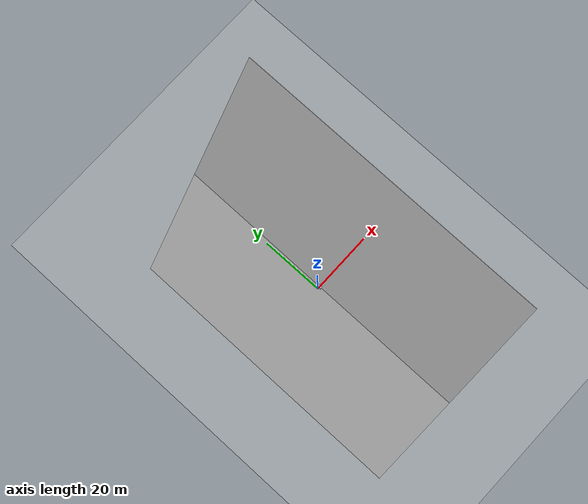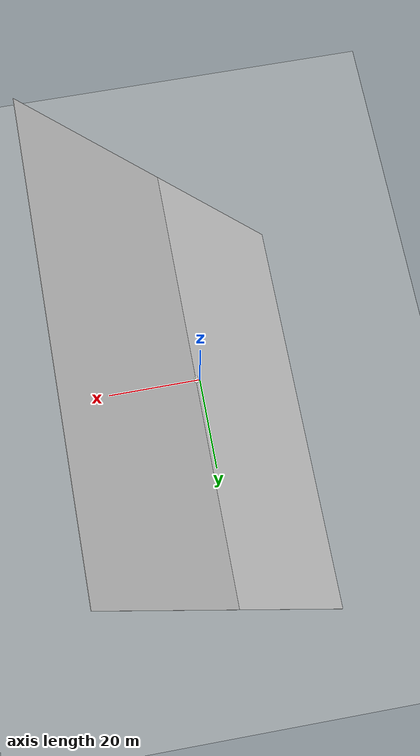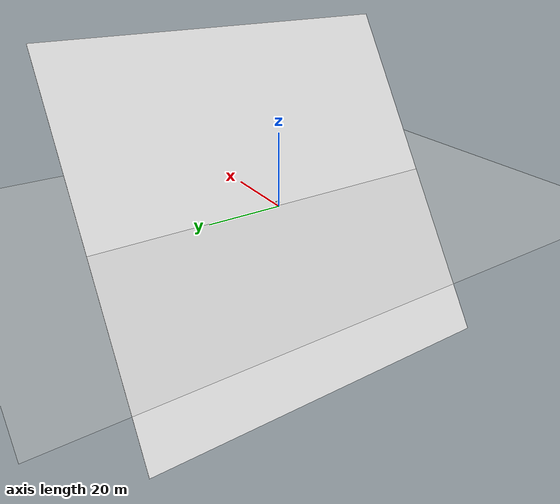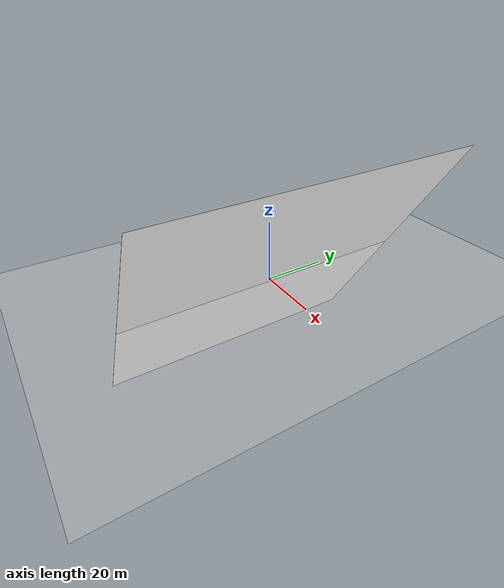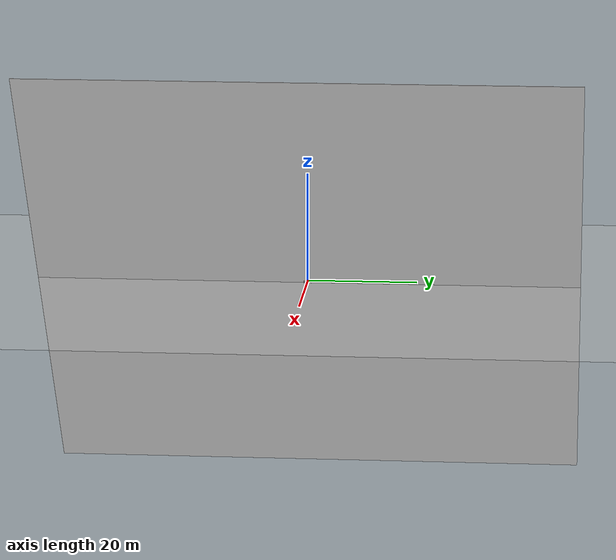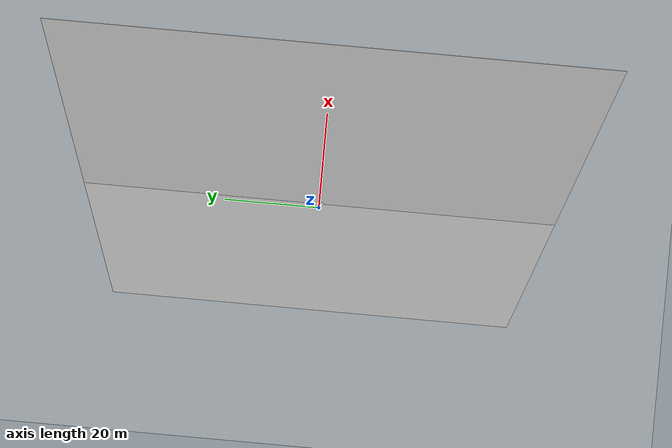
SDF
<sdf version="1.6">
 <world name="default">
  <model name="ground_plane">
   <static>1</static>
   <link name="link">
    <collision name="collision">
     <geometry><plane><normal>0 0 1</normal><size>100 100</size></plane></geometry>
     <surface><friction><ode><mu>100</mu><mu2>50</mu2></ode></friction></surface>
    </collision>
    <visual name="visual">
     <cast_shadows>0</cast_shadows>
     <geometry><plane><normal>0 0 1</normal><size>100 100</size></plane></geometry>
     <material>
      <script><uri>file://media/materials/scripts/gazebo.material</uri><name>Gazebo/Grey</name></script>
     </material>
    </visual>
   </link>
  </model>
  <model name="wall_plane">
   <pose>1.0 0 0 0 -1.0 0</pose>
   <static>1</static>
   <link name="link">
    <collision name="collision">
     <geometry><plane><normal>0 0 1</normal><size>100 100</size></plane></geometry>
     <surface><friction><ode><mu>100</mu><mu2>50</mu2></ode></friction></surface>
    </collision>
    <visual name="visual">
     <cast_shadows>0</cast_shadows>
     <geometry><plane><normal>0 0 1</normal><size>100 100</size></plane></geometry>
     <material>
      <script><uri>file://media/materials/scripts/gazebo.material</uri><name>Gazebo/White</name></script>
     </material>
    </visual>
   </link>
  </model>
  <gravity>0 0 -9.8</gravity>
  <magnetic_field>6e-06 2.3e-05 -4.2e-05</magnetic_field>
  <atmosphere type="adiabatic"/>
  <physics name="default_physics" default="0" type="ode">
   <max_step_size>0.001</max_step_size>
   <real_time_factor>1</real_time_factor>
   <real_time_update_rate>1000</real_time_update_rate>
  </physics>
  <scene><ambient>0.4 0.4 0.4 1</ambient><background>0.7 0.7 0.7 1</background><shadows>1</shadows></scene>
  <spherical_coordinates>
   <surface_model>EARTH_WGS84</surface_model>
   <latitude_deg>0</latitude_deg>
   <longitude_deg>0</longitude_deg>
   <elevation>0</elevation>
   <heading_deg>0</heading_deg>
  </spherical_coordinates>
  <model name="kinect2_victor_head">
   <pose>0.07 0 1.5 0 0.5 0</pose>
   <static>1</static>
   <link name="kinect2_victor_head">
    <inertial>
     <mass>1</mass>
     <inertia><ixx>1</ixx><ixy>0</ixy><ixz>0</ixz><iyy>1</iyy><iyz>0</iyz><izz>1</izz></inertia>
    </inertial>
    <collision name="collision"><geometry><box><size>0.1 0.1 0.1</size></box></geometry></collision>
    <visual name="visual"><geometry><box><size>0.1 0.1 0.1</size></box></geometry></visual>
    <sensor name="camera" type="depth">
     <camera name="__default__">
      <horizontal_fov>1.578</horizontal_fov>
      <image><width>1920</width><height>1080</height><format>B8G8R8</format></image>
      <clip><near>0.05</near><far>2.5</far></clip>
      <depth_camera><output>depths</output></depth_camera>
     </camera>
     <plugin name="kinect2_victor_head_plugin" filename="libgazebo_ros_openni_kinect.so">
      <cameraName>kinect2_victor_head</cameraName>
      <alwaysOn>true</alwaysOn>
      <updateRate>3</updateRate>
      <imageTopicName>hd/image_color_rect</imageTopicName>
      <depthImageTopicName>hd/image_depth_rect</depthImageTopicName>
      <pointCloudTopicName>hd/points</pointCloudTopicName>
      <cameraInfoTopicName>hd/camera_info</cameraInfoTopicName>
      <depthImageCameraInfoTopicName>hd/camera_info</depthImageCameraInfoTopicName>
      <frameName>kinect2_victor_head_optical_frame</frameName>
      <baseline>0.07</baseline>
      <distortion_k1>0.0</distortion_k1>
      <distortion_k2>0.0</distortion_k2>
      <distortion_k3>0.0</distortion_k3>
      <distortion_t1>0.0</distortion_t1>
      <distortion_t2>0.0</distortion_t2>
      <pointCloudCutoff>0.05</pointCloudCutoff>
      <robotNamespace>/</robotNamespace>
     </plugin>
     <always_on>1</always_on>
     <update_rate>3</update_rate>
    </sensor>
    <gravity>0</gravity>
   </link>
  </model>
  <model name="table">
   <static>1</static>
   <link name="link">
    <collision name="surface">
     <pose>0 0 1 0 -0 0</pose>
     <geometry><box><size>1.5 0.8 0.03</size></box></geometry>
     <surface><friction><ode><mu>0.6</mu><mu2>0.6</mu2></ode></friction></surface>
    </collision>
    <visual name="visual1">
     <pose>0 0 1 0 -0 0</pose>
     <geometry><box><size>1.4 0.8 0.04</size></box></geometry>
     <material>
      <script><uri>file://media/materials/scripts/gazebo.material</uri><name>Gazebo/White</name></script>
     </material>
    </visual>
    <collision name="front_left_leg">
     <pose>0.68 0.38 0.5 0 -0 0</pose>
     <geometry><cylinder><radius>0.02</radius><length>1</length></cylinder></geometry>
    </collision>
    <visual name="front_left_leg">
     <pose>0.68 0.38 0.5 0 -0 0</pose>
     <geometry><cylinder><radius>0.02</radius><length>1</length></cylinder></geometry>
     <material>
      <script><uri>file://media/materials/scripts/gazebo.material</uri><name>Gazebo/Grey</name></script>
     </material>
    </visual>
    <collision name="front_right_leg">
     <pose>0.68 -0.38 0.5 0 -0 0</pose>
     <geometry><cylinder><radius>0.02</radius><length>1</length></cylinder></geometry>
    </collision>
    <visual name="front_right_leg">
     <pose>0.68 -0.38 0.5 0 -0 0</pose>
     <geometry><cylinder><radius>0.02</radius><length>1</length></cylinder></geometry>
     <material>
      <script><uri>file://media/materials/scripts/gazebo.material</uri><name>Gazebo/Grey</name></script>
     </material>
    </visual>
    <collision name="back_right_leg">
     <pose>-0.68 -0.38 0.5 0 -0 0</pose>
     <geometry><cylinder><radius>0.02</radius><length>1</length></cylinder></geometry>
    </collision>
    <visual name="back_right_leg">
     <pose>-0.68 -0.38 0.5 0 -0 0</pose>
     <geometry><cylinder><radius>0.02</radius><length>1</length></cylinder></geometry>
     <material>
      <script><uri>file://media/materials/scripts/gazebo.material</uri><name>Gazebo/Grey</name></script>
     </material>
    </visual>
    <collision name="back_left_leg">
     <pose>-0.68 0.38 0.5 0 -0 0</pose>
     <geometry><cylinder><radius>0.02</radius><length>1</length></cylinder></geometry>
    </collision>
    <visual name="back_left_leg">
     <pose>-0.68 0.38 0.5 0 -0 0</pose>
     <geometry><cylinder><radius>0.02</radius><length>1</length></cylinder></geometry>
     <material>
      <script><uri>file://media/materials/scripts/gazebo.material</uri><name>Gazebo/Grey</name></script>
     </material>
    </visual>
    <inertial>
     <inertia><ixx>1</ixx><ixy>0</ixy><ixz>0</ixz><iyy>1</iyy><iyz>0</iyz><izz>1</izz></inertia>
     <mass>1</mass>
    </inertial>
   </link>
   <pose>0.8 0 -0.2 0 0 -1.5708</pose>
  </model>
  <light name="user_spot_light_0" type="spot">
   <pose>0 0 20 0 -0 0</pose>
   <diffuse>0.5 0.5 0.5 1</diffuse>
   <specular>0.1 0.1 0.1 1</specular>
   <direction>0 0 -1</direction>
   <attenuation>
    <range>20</range>
    <constant>0.5</constant>
    <linear>0.01</linear>
    <quadratic>0.001</quadratic>
   </attenuation>
   <cast_shadows>0</cast_shadows>
   <spot><inner_angle>0.6</inner_angle><outer_angle>1</outer_angle><falloff>1</falloff></spot>
  </light>
  <model name="cube_b">
   <link name="link_2">
    <pose>0 0 0.1 0 -0 0</pose>
    <inertial>
     <mass>1</mass>
     <inertia>
      <ixx>0.166667</ixx>
      <ixy>0</ixy>
      <ixz>0</ixz>
      <iyy>0.166667</iyy>
      <iyz>0</iyz>
      <izz>0.166667</izz>
     </inertia>
    </inertial>
    <visual name="visual">
     <geometry><box><size>0.1249 0.1249 0.1249</size></box></geometry>
     <material>
      <lighting>1</lighting>
      <script><uri>file://media/materials/scripts/gazebo.material</uri><name>Gazebo/Grey</name></script>
      <ambient>0 0 1 1</ambient>
      <diffuse>0 0 1 1</diffuse>
      <specular>0 0 0 1</specular>
      <emissive>0 0 0 1</emissive>
      <shader type="vertex"><normal_map>__default__</normal_map></shader>
     </material>
    </visual>
    <collision name="collision">
     <geometry><box><size>0.1249 0.1249 0.1249</size></box></geometry>
     <surface>
      <friction>
       <ode><mu>1</mu><mu2>1</mu2><fdir1>0 0 0</fdir1><slip1>0</slip1><slip2>0</slip2></ode>
       <torsional>
        <coefficient>1</coefficient>
        <patch_radius>0</patch_radius>
        <surface_radius>0</surface_radius>
        <use_patch_radius>1</use_patch_radius>
        <ode><slip>0</slip></ode>
       </torsional>
      </friction>
      <bounce><restitution_coefficient>0</restitution_coefficient><threshold>1e+06</threshold></bounce>
      <contact>
       <collide_without_contact>0</collide_without_contact>
       <collide_without_contact_bitmask>1</collide_without_contact_bitmask>
       <collide_bitmask>1</collide_bitmask>
       <ode>
        <soft_cfm>0</soft_cfm>
        <soft_erp>0.2</soft_erp>
        <kp>1e+13</kp>
        <kd>1</kd>
        <max_vel>0.01</max_vel>
        <min_depth>0</min_depth>
       </ode>
       <bullet>
        <split_impulse>1</split_impulse>
        <split_impulse_penetration_threshold>-0.01</split_impulse_penetration_threshold>
        <soft_cfm>0</soft_cfm>
        <soft_erp>0.2</soft_erp>
        <kp>1e+13</kp>
        <kd>1</kd>
       </bullet>
      </contact>
     </surface>
    </collision>
   </link>
   <static>0</static>
   <pose>1 0.25 1 0 -0 0</pose>
  </model>
  <model name="cube_g">
   <link name="link_2">
    <pose>0 0 0.1 0 -0 0</pose>
    <inertial>
     <mass>1</mass>
     <inertia>
      <ixx>0.166667</ixx>
      <ixy>0</ixy>
      <ixz>0</ixz>
      <iyy>0.166667</iyy>
      <iyz>0</iyz>
      <izz>0.166667</izz>
     </inertia>
    </inertial>
    <visual name="visual">
     <geometry><box><size>0.1249 0.1249 0.1249</size></box></geometry>
     <material>
      <lighting>1</lighting>
      <script><uri>file://media/materials/scripts/gazebo.material</uri><name>Gazebo/Grey</name></script>
      <ambient>0 1 0 1</ambient>
      <diffuse>0 1 0 1</diffuse>
      <specular>0 0 0 1</specular>
      <emissive>0 0 0 1</emissive>
      <shader type="vertex"><normal_map>__default__</normal_map></shader>
     </material>
    </visual>
    <collision name="collision">
     <geometry><box><size>0.1249 0.1249 0.1249</size></box></geometry>
     <surface>
      <friction>
       <ode><mu>1</mu><mu2>1</mu2><fdir1>0 0 0</fdir1><slip1>0</slip1><slip2>0</slip2></ode>
       <torsional>
        <coefficient>1</coefficient>
        <patch_radius>0</patch_radius>
        <surface_radius>0</surface_radius>
        <use_patch_radius>1</use_patch_radius>
        <ode><slip>0</slip></ode>
       </torsional>
      </friction>
      <bounce><restitution_coefficient>0</restitution_coefficient><threshold>1e+06</threshold></bounce>
      <contact>
       <collide_without_contact>0</collide_without_contact>
       <collide_without_contact_bitmask>1</collide_without_contact_bitmask>
       <collide_bitmask>1</collide_bitmask>
       <ode>
        <soft_cfm>0</soft_cfm>
        <soft_erp>0.2</soft_erp>
        <kp>1e+13</kp>
        <kd>1</kd>
        <max_vel>0.01</max_vel>
        <min_depth>0</min_depth>
       </ode>
       <bullet>
        <split_impulse>1</split_impulse>
        <split_impulse_penetration_threshold>-0.01</split_impulse_penetration_threshold>
        <soft_cfm>0</soft_cfm>
        <soft_erp>0.2</soft_erp>
        <kp>1e+13</kp>
        <kd>1</kd>
       </bullet>
      </contact>
     </surface>
    </collision>
   </link>
   <static>0</static>
   <pose>1 -0.25 1 0 -0 0</pose>
  </model>
  <model name="cube_r">
   <link name="link_2">
    <pose>0 0 0.1 0 -0 0</pose>
    <inertial>
     <mass>1</mass>
     <inertia>
      <ixx>0.166667</ixx>
      <ixy>0</ixy>
      <ixz>0</ixz>
      <iyy>0.166667</iyy>
      <iyz>0</iyz>
      <izz>0.166667</izz>
     </inertia>
    </inertial>
    <visual name="visual">
     <geometry><box><size>0.1249 0.1249 0.1249</size></box></geometry>
     <material>
      <lighting>1</lighting>
      <script><uri>file://media/materials/scripts/gazebo.material</uri><name>Gazebo/Grey</name></script>
      <ambient>1 0 0 1</ambient>
      <diffuse>1 0 0 1</diffuse>
      <specular>0 0 0 1</specular>
      <emissive>0 0 0 1</emissive>
      <shader type="vertex"><normal_map>__default__</normal_map></shader>
     </material>
    </visual>
    <collision name="collision">
     <geometry><box><size>0.1249 0.1249 0.1249</size></box></geometry>
     <surface>
      <friction>
       <ode><mu>1</mu><mu2>1</mu2><fdir1>0 0 0</fdir1><slip1>0</slip1><slip2>0</slip2></ode>
       <torsional>
        <coefficient>1</coefficient>
        <patch_radius>0</patch_radius>
        <surface_radius>0</surface_radius>
        <use_patch_radius>1</use_patch_radius>
        <ode><slip>0</slip></ode>
       </torsional>
      </friction>
      <bounce><restitution_coefficient>0</restitution_coefficient><threshold>1e+06</threshold></bounce>
      <contact>
       <collide_without_contact>0</collide_without_contact>
       <collide_without_contact_bitmask>1</collide_without_contact_bitmask>
       <collide_bitmask>1</collide_bitmask>
       <ode>
        <soft_cfm>0</soft_cfm>
        <soft_erp>0.2</soft_erp>
        <kp>1e+13</kp>
        <kd>1</kd>
        <max_vel>0.01</max_vel>
        <min_depth>0</min_depth>
       </ode>
       <bullet>
        <split_impulse>1</split_impulse>
        <split_impulse_penetration_threshold>-0.01</split_impulse_penetration_threshold>
        <soft_cfm>0</soft_cfm>
        <soft_erp>0.2</soft_erp>
        <kp>1e+13</kp>
        <kd>1</kd>
       </bullet>
      </contact>
     </surface>
    </collision>
   </link>
   <static>0</static>
   <pose>0.75 -0.25 1 0 -0 0</pose>
  </model>
  <model name="cube_y">
   <link name="link_2">
    <pose>0 0 0.1 0 -0 0</pose>
    <inertial>
     <mass>1</mass>
     <inertia>
      <ixx>0.166667</ixx>
      <ixy>0</ixy>
      <ixz>0</ixz>
      <iyy>0.166667</iyy>
      <iyz>0</iyz>
      <izz>0.166667</izz>
     </inertia>
    </inertial>
    <visual name="visual">
     <geometry><box><size>0.1249 0.1249 0.1249</size></box></geometry>
     <material>
      <lighting>1</lighting>
      <script><uri>file://media/materials/scripts/gazebo.material</uri><name>Gazebo/Grey</name></script>
      <ambient>1 1 0 1</ambient>
      <diffuse>1 1 0 1</diffuse>
      <specular>0 0 0 1</specular>
      <emissive>0 0 0 1</emissive>
      <shader type="vertex"><normal_map>__default__</normal_map></shader>
     </material>
    </visual>
    <collision name="collision">
     <geometry><box><size>0.1249 0.1249 0.1249</size></box></geometry>
     <surface>
      <friction>
       <ode><mu>1</mu><mu2>1</mu2><fdir1>0 0 0</fdir1><slip1>0</slip1><slip2>0</slip2></ode>
       <torsional>
        <coefficient>1</coefficient>
        <patch_radius>0</patch_radius>
        <surface_radius>0</surface_radius>
        <use_patch_radius>1</use_patch_radius>
        <ode><slip>0</slip></ode>
       </torsional>
      </friction>
      <bounce><restitution_coefficient>0</restitution_coefficient><threshold>1e+06</threshold></bounce>
      <contact>
       <collide_without_contact>0</collide_without_contact>
       <collide_without_contact_bitmask>1</collide_without_contact_bitmask>
       <collide_bitmask>1</collide_bitmask>
       <ode>
        <soft_cfm>0</soft_cfm>
        <soft_erp>0.2</soft_erp>
        <kp>1e+13</kp>
        <kd>1</kd>
        <max_vel>0.01</max_vel>
        <min_depth>0</min_depth>
       </ode>
       <bullet>
        <split_impulse>1</split_impulse>
        <split_impulse_penetration_threshold>-0.01</split_impulse_penetration_threshold>
        <soft_cfm>0</soft_cfm>
        <soft_erp>0.2</soft_erp>
        <kp>1e+13</kp>
        <kd>1</kd>
       </bullet>
      </contact>
     </surface>
    </collision>
   </link>
   <static>0</static>
   <pose>0.75 0.25 1 0 -0 0</pose>
  </model>
 </world>
</sdf>
